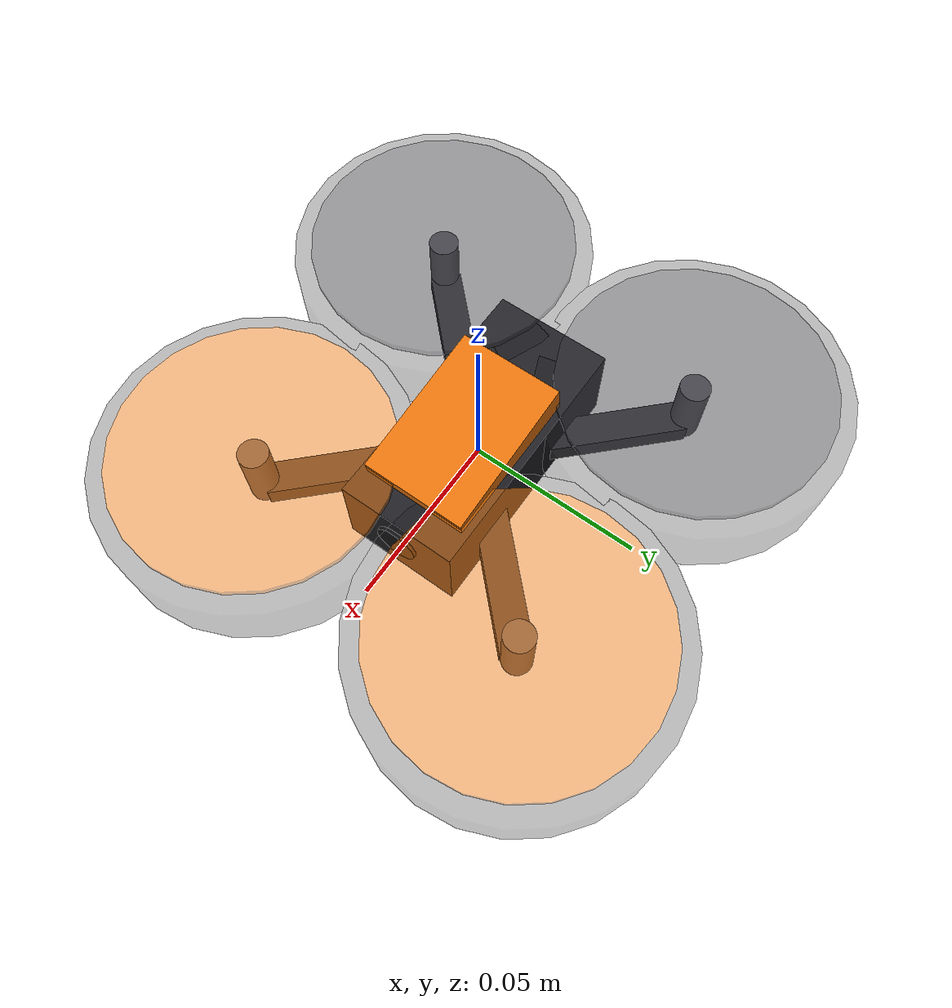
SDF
<?xml version="1.0"?>
<!-- STRATOSDRONE rigid-body model. Mass/inertia mirror fc_core/test/sil_plant.c
     (the host SIL plant) so simulation results transfer. Body frame FLU.
     SPDX-License-Identifier: MIT -->
<sdf version="1.9">
  <model name="stratosdrone">
    <link name="base_link">
      <inertial>
        <mass>0.092</mass>
        <inertia>
          <ixx>1.1e-4</ixx><iyy>1.1e-4</iyy><izz>2.0e-4</izz>
          <ixy>0</ixy><ixz>0</ixz><iyz>0</iyz>
        </inertia>
      </inertial>

      <collision name="hull">
        <geometry><box><size>0.13 0.13 0.041</size></box></geometry>
        <surface>
          <friction><ode><mu>0.8</mu><mu2>0.8</mu2></ode></friction>
        </surface>
      </collision>

      <!-- Tello-style elongated narrow body: long along +x (forward), narrow
           in y. Camera bump at the nose, battery slab at the rear. -->
      <visual name="body">
        <pose>0 0 0.004 0 0 0</pose>
        <geometry><box><size>0.072 0.034 0.026</size></box></geometry>
        <material><ambient>0.12 0.12 0.14 1</ambient><diffuse>0.12 0.12 0.14 1</diffuse></material>
      </visual>
      <visual name="canopy">
        <pose>0.006 0 0.018 0 0.12 0</pose>
        <geometry><box><size>0.044 0.03 0.012</size></box></geometry>
        <material><ambient>0.9 0.45 0.05 1</ambient><diffuse>0.9 0.45 0.05 1</diffuse></material>
      </visual>
      <visual name="camera"><pose>0.034 0 0.006 0 1.5708 0</pose>
        <geometry><cylinder><radius>0.006</radius><length>0.006</length></cylinder></geometry>
        <material><ambient>0.05 0.05 0.06 1</ambient><diffuse>0.05 0.05 0.06 1</diffuse></material></visual>
      <visual name="battery">
        <pose>-0.022 0 -0.013 0 0 0</pose>
        <geometry><box><size>0.03 0.026 0.013</size></box></geometry>
        <material><ambient>0.08 0.08 0.08 1</ambient><diffuse>0.08 0.08 0.08 1</diffuse></material>
      </visual>

      <!-- four slim arms reaching diagonally to the motors at ±41.7 mm -->
      <visual name="arm_fr"><pose>0.0235 -0.0235 0 0 0 -0.785</pose>
        <geometry><box><size>0.05 0.009 0.006</size></box></geometry>
        <material><ambient>0.18 0.18 0.2 1</ambient><diffuse>0.18 0.18 0.2 1</diffuse></material></visual>
      <visual name="arm_br"><pose>-0.0235 -0.0235 0 0 0 0.785</pose>
        <geometry><box><size>0.05 0.009 0.006</size></box></geometry>
        <material><ambient>0.18 0.18 0.2 1</ambient><diffuse>0.18 0.18 0.2 1</diffuse></material></visual>
      <visual name="arm_bl"><pose>-0.0235 0.0235 0 0 0 -0.785</pose>
        <geometry><box><size>0.05 0.009 0.006</size></box></geometry>
        <material><ambient>0.18 0.18 0.2 1</ambient><diffuse>0.18 0.18 0.2 1</diffuse></material></visual>
      <visual name="arm_fl"><pose>0.0235 0.0235 0 0 0 0.785</pose>
        <geometry><box><size>0.05 0.009 0.006</size></box></geometry>
        <material><ambient>0.18 0.18 0.2 1</ambient><diffuse>0.18 0.18 0.2 1</diffuse></material></visual>

      <visual name="motor_fr"><pose>0.0417 -0.0417 0.008 0 0 0</pose>
        <geometry><cylinder><radius>0.00425</radius><length>0.02</length></cylinder></geometry>
        <material><ambient>0.35 0.35 0.38 1</ambient><diffuse>0.35 0.35 0.38 1</diffuse></material></visual>
      <visual name="motor_br"><pose>-0.0417 -0.0417 0.008 0 0 0</pose>
        <geometry><cylinder><radius>0.00425</radius><length>0.02</length></cylinder></geometry>
        <material><ambient>0.35 0.35 0.38 1</ambient><diffuse>0.35 0.35 0.38 1</diffuse></material></visual>
      <visual name="motor_bl"><pose>-0.0417 0.0417 0.008 0 0 0</pose>
        <geometry><cylinder><radius>0.00425</radius><length>0.02</length></cylinder></geometry>
        <material><ambient>0.35 0.35 0.38 1</ambient><diffuse>0.35 0.35 0.38 1</diffuse></material></visual>
      <visual name="motor_fl"><pose>0.0417 0.0417 0.008 0 0 0</pose>
        <geometry><cylinder><radius>0.00425</radius><length>0.02</length></cylinder></geometry>
        <material><ambient>0.35 0.35 0.38 1</ambient><diffuse>0.35 0.35 0.38 1</diffuse></material></visual>

      <visual name="prop_fr"><pose>0.0417 -0.0417 0.0185 0 0 0</pose>
        <geometry><cylinder><radius>0.0381</radius><length>0.002</length></cylinder></geometry>
        <material><ambient>0.9 0.45 0.05 0.5</ambient><diffuse>0.9 0.45 0.05 0.5</diffuse></material>
        <transparency>0.45</transparency></visual>
      <visual name="prop_br"><pose>-0.0417 -0.0417 0.0185 0 0 0</pose>
        <geometry><cylinder><radius>0.0381</radius><length>0.002</length></cylinder></geometry>
        <material><ambient>0.2 0.2 0.22 0.5</ambient><diffuse>0.2 0.2 0.22 0.5</diffuse></material>
        <transparency>0.45</transparency></visual>
      <visual name="prop_bl"><pose>-0.0417 0.0417 0.0185 0 0 0</pose>
        <geometry><cylinder><radius>0.0381</radius><length>0.002</length></cylinder></geometry>
        <material><ambient>0.2 0.2 0.22 0.5</ambient><diffuse>0.2 0.2 0.22 0.5</diffuse></material>
        <transparency>0.45</transparency></visual>
      <visual name="prop_fl"><pose>0.0417 0.0417 0.0185 0 0 0</pose>
        <geometry><cylinder><radius>0.0381</radius><length>0.002</length></cylinder></geometry>
        <material><ambient>0.9 0.45 0.05 0.5</ambient><diffuse>0.9 0.45 0.05 0.5</diffuse></material>
        <transparency>0.45</transparency></visual>

      <!-- whoop cinewhoop ducts (translucent rings around each prop) -->
      <visual name="duct_fr"><pose>0.0417 -0.0417 0.008 0 0 0</pose>
        <geometry><cylinder><radius>0.0432</radius><length>0.018</length></cylinder></geometry>
        <material><ambient>0.1 0.1 0.11 0.30</ambient><diffuse>0.1 0.1 0.11 0.30</diffuse></material>
        <transparency>0.7</transparency></visual>
      <visual name="duct_br"><pose>-0.0417 -0.0417 0.008 0 0 0</pose>
        <geometry><cylinder><radius>0.0432</radius><length>0.018</length></cylinder></geometry>
        <material><ambient>0.1 0.1 0.11 0.30</ambient><diffuse>0.1 0.1 0.11 0.30</diffuse></material>
        <transparency>0.7</transparency></visual>
      <visual name="duct_bl"><pose>-0.0417 0.0417 0.008 0 0 0</pose>
        <geometry><cylinder><radius>0.0432</radius><length>0.018</length></cylinder></geometry>
        <material><ambient>0.1 0.1 0.11 0.30</ambient><diffuse>0.1 0.1 0.11 0.30</diffuse></material>
        <transparency>0.7</transparency></visual>
      <visual name="duct_fl"><pose>0.0417 0.0417 0.008 0 0 0</pose>
        <geometry><cylinder><radius>0.0432</radius><length>0.018</length></cylinder></geometry>
        <material><ambient>0.1 0.1 0.11 0.30</ambient><diffuse>0.1 0.1 0.11 0.30</diffuse></material>
        <transparency>0.7</transparency></visual>
    </link>
  </model>
</sdf>
